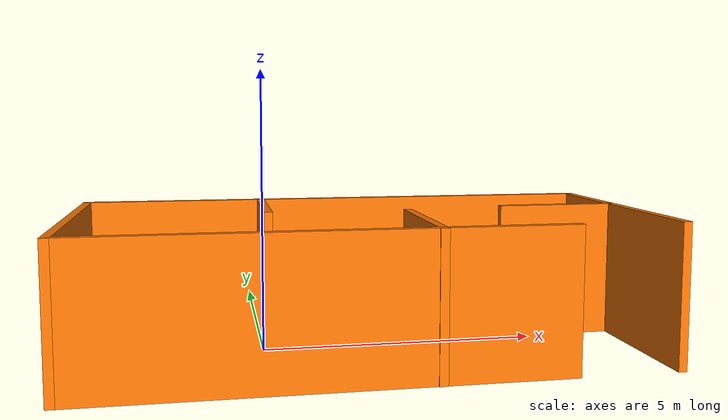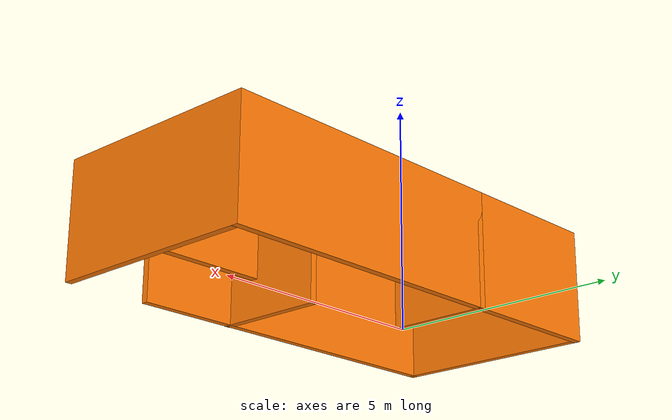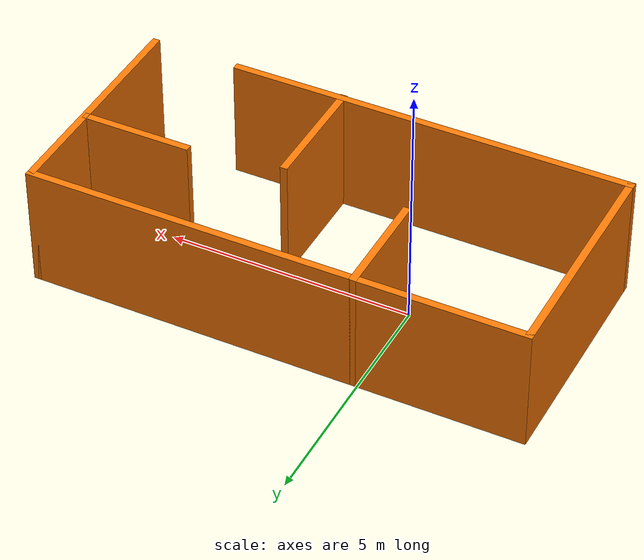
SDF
<?xml version='1.0'?>
<sdf version='1.7'>
  <model name='Simple_Maze'>
    <pose>1.72915 -0.181775 0 0 -0 0</pose>
    <link name='Wall_12'>
      <collision name='Wall_12_Collision'>
        <geometry>
          <box>
            <size>4.75 0.15 2.5</size>
          </box>
        </geometry>
        <pose>0 0 1.25 0 -0 0</pose>
      </collision>
      <visual name='Wall_12_Visual'>
        <pose>0 0 1.25 0 -0 0</pose>
        <geometry>
          <box>
            <size>4.75 0.15 2.5</size>
          </box>
        </geometry>
        <material>
          <script>
            <uri>file://media/materials/scripts/gazebo.material</uri>
            <name>Gazebo/Grey</name>
          </script>
          <ambient>0.996078 0.47451 0.0196078 1</ambient>
        </material>
        <meta>
          <layer>0</layer>
        </meta>
      </visual>
      <pose>-4.975 0.008088 0 0 -0 1.5708</pose>
    </link>
    <link name='Wall_14'>
      <collision name='Wall_14_Collision'>
        <geometry>
          <box>
            <size>3.5 0.15 2.5</size>
          </box>
        </geometry>
        <pose>0 0 1.25 0 -0 0</pose>
      </collision>
      <visual name='Wall_14_Visual'>
        <pose>0 0 1.25 0 -0 0</pose>
        <geometry>
          <box>
            <size>3.5 0.15 2.5</size>
          </box>
        </geometry>
        <material>
          <script>
            <uri>file://media/materials/scripts/gazebo.material</uri>
            <name>Gazebo/Grey</name>
          </script>
          <ambient>0.996078 0.47451 0.0196078 1</ambient>
        </material>
        <meta>
          <layer>0</layer>
        </meta>
      </visual>
      <pose>-3.3 2.30809 0 0 -0 0</pose>
    </link>
    <link name='Wall_15'>
      <collision name='Wall_15_Collision'>
        <geometry>
          <box>
            <size>2.25 0.15 2.5</size>
          </box>
        </geometry>
        <pose>0 0 1.25 0 -0 0</pose>
      </collision>
      <visual name='Wall_15_Visual'>
        <pose>0 0 1.25 0 -0 0</pose>
        <geometry>
          <box>
            <size>2.25 0.15 2.5</size>
          </box>
        </geometry>
        <material>
          <script>
            <uri>file://media/materials/scripts/gazebo.material</uri>
            <name>Gazebo/Grey</name>
          </script>
          <ambient>0.996078 0.47451 0.0196078 1</ambient>
        </material>
        <meta>
          <layer>0</layer>
        </meta>
      </visual>
      <pose>-1.625 1.25809 0 0 -0 -1.5708</pose>
    </link>
    <link name='Wall_19'>
      <collision name='Wall_19_Collision'>
        <geometry>
          <box>
            <size>2.5 0.15 2.5</size>
          </box>
        </geometry>
        <pose>0 0 1.25 0 -0 0</pose>
      </collision>
      <visual name='Wall_19_Visual'>
        <pose>0 0 1.25 0 -0 0</pose>
        <geometry>
          <box>
            <size>2.5 0.15 2.5</size>
          </box>
        </geometry>
        <material>
          <script>
            <uri>file://media/materials/scripts/gazebo.material</uri>
            <name>Gazebo/Grey</name>
          </script>
          <ambient>0.996078 0.47451 0.0196078 1</ambient>
        </material>
        <meta>
          <layer>0</layer>
        </meta>
      </visual>
      <pose>0.901739 -1.13309 0 0 -0 1.5708</pose>
    </link>
    <link name='Wall_21'>
      <collision name='Wall_21_Collision'>
        <geometry>
          <box>
            <size>6.75 0.15 2.5</size>
          </box>
        </geometry>
        <pose>0 0 1.25 0 -0 0</pose>
      </collision>
      <visual name='Wall_21_Visual'>
        <pose>0 0 1.25 0 -0 0</pose>
        <geometry>
          <box>
            <size>6.75 0.15 2.5</size>
          </box>
        </geometry>
        <material>
          <script>
            <uri>file://media/materials/scripts/gazebo.material</uri>
            <name>Gazebo/Grey</name>
          </script>
          <ambient>0.996078 0.47451 0.0196078 1</ambient>
        </material>
        <meta>
          <layer>0</layer>
        </meta>
      </visual>
      <pose>1.675 2.30809 0 0 -0 0</pose>
    </link>
    <link name='Wall_22'>
      <collision name='Wall_22_Collision'>
        <geometry>
          <box>
            <size>4.75 0.15 2.5</size>
          </box>
        </geometry>
        <pose>0 0 1.25 0 -0 0</pose>
      </collision>
      <visual name='Wall_22_Visual'>
        <pose>0 0 1.25 0 -0 0</pose>
        <geometry>
          <box>
            <size>4.75 0.15 2.5</size>
          </box>
        </geometry>
        <material>
          <script>
            <uri>file://media/materials/scripts/gazebo.material</uri>
            <name>Gazebo/Grey</name>
          </script>
          <ambient>0.996078 0.47451 0.0196078 1</ambient>
        </material>
        <meta>
          <layer>0</layer>
        </meta>
      </visual>
      <pose>4.975 0.008088 0 0 -0 -1.5708</pose>
    </link>
    <link name='Wall_27'>
      <collision name='Wall_27_Collision'>
        <geometry>
          <box>
            <size>2.25 0.15 2.5</size>
          </box>
        </geometry>
        <pose>0 0 1.25 0 -0 0</pose>
      </collision>
      <visual name='Wall_27_Visual'>
        <pose>0 0 1.25 0 -0 0</pose>
        <geometry>
          <box>
            <size>2.25 0.15 2.5</size>
          </box>
        </geometry>
        <material>
          <script>
            <uri>file://media/materials/scripts/gazebo.material</uri>
            <name>Gazebo/Grey</name>
          </script>
          <ambient>0.996078 0.47451 0.0196078 1</ambient>
        </material>
        <meta>
          <layer>0</layer>
        </meta>
      </visual>
      <pose>3.86685 0.368652 0 0 -0 3.14159</pose>
    </link>
    <link name='Wall_6'>
      <collision name='Wall_6_Collision'>
        <geometry>
          <box>
            <size>8.25 0.15 2.5</size>
          </box>
        </geometry>
        <pose>0 0 1.25 0 -0 0</pose>
      </collision>
      <visual name='Wall_6_Visual'>
        <pose>0 0 1.25 0 -0 0</pose>
        <geometry>
          <box>
            <size>8.25 0.15 2.5</size>
          </box>
        </geometry>
        <material>
          <script>
            <uri>file://media/materials/scripts/gazebo.material</uri>
            <name>Gazebo/Grey</name>
          </script>
          <ambient>0.996078 0.47451 0.0196078 1</ambient>
        </material>
        <meta>
          <layer>0</layer>
        </meta>
      </visual>
      <pose>-0.925 -2.29191 0 0 -0 3.14159</pose>
    </link>
    <static>1</static>
  </model>
</sdf>
